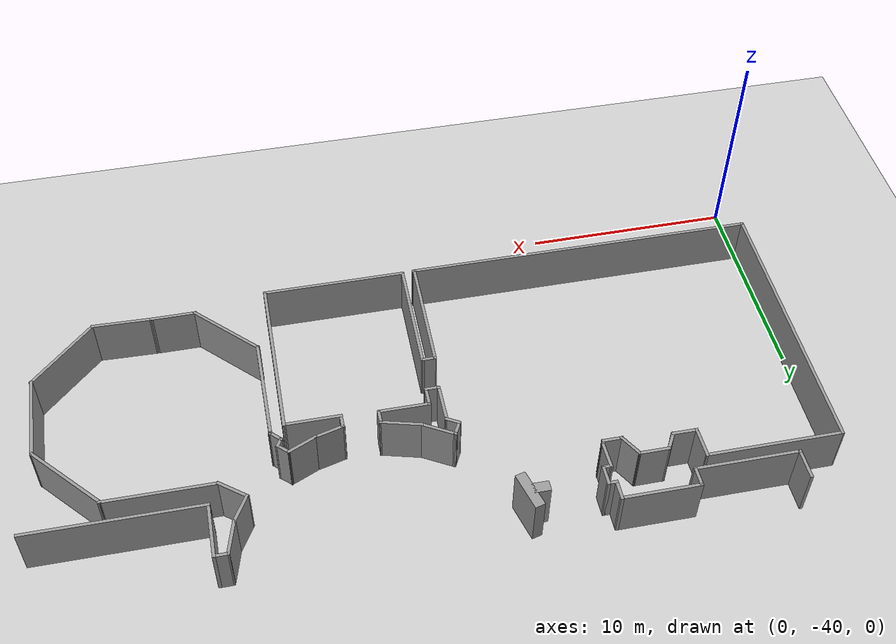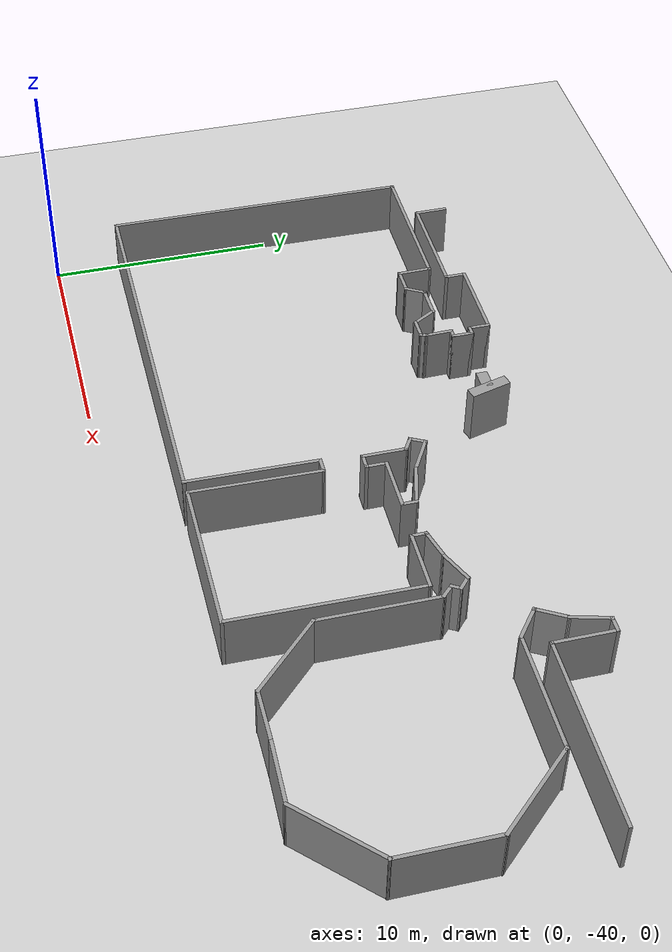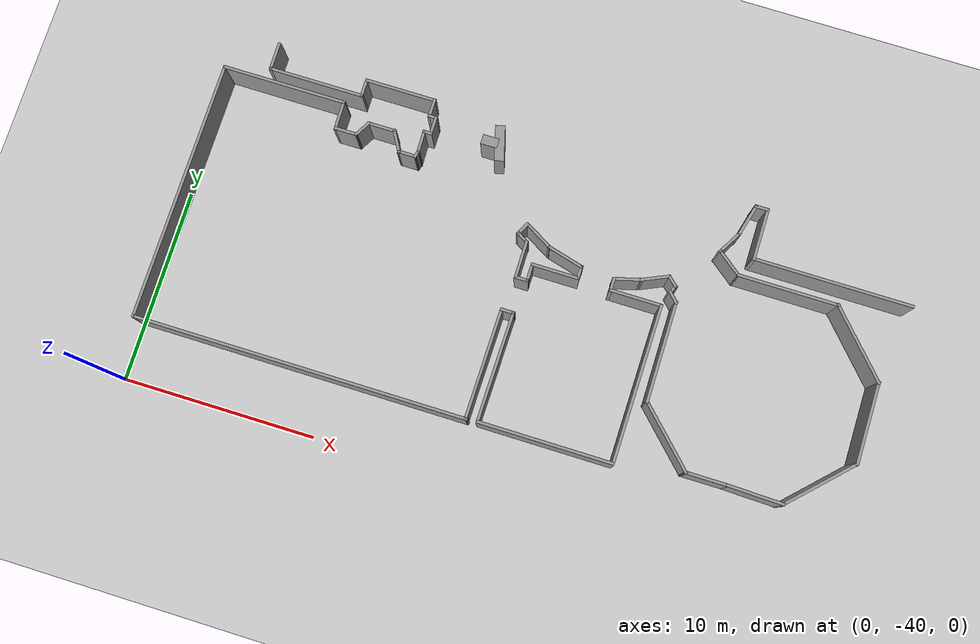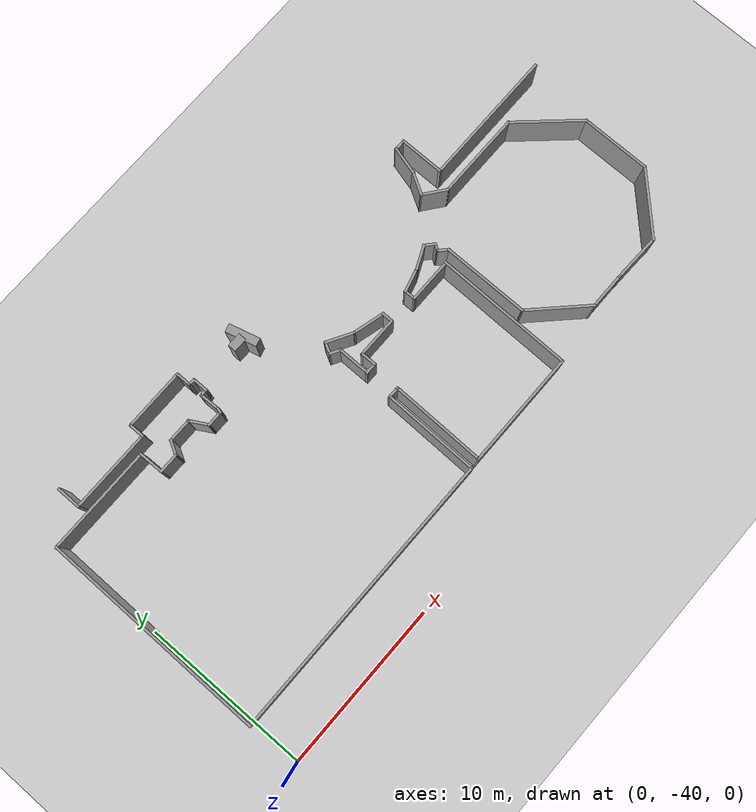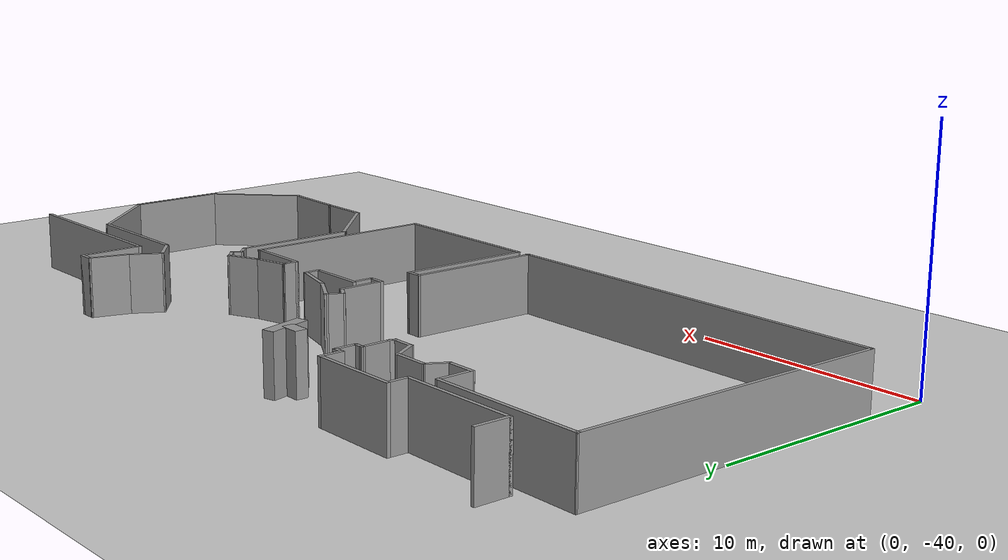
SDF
<sdf version="1.7">
 <world name="default">
  <model name="ground_plane">
   <static>1</static>
   <link name="link">
    <collision name="collision">
     <geometry><plane><normal>0 0 1</normal><size>100 100</size></plane></geometry>
     <surface>
      <contact><collide_bitmask>65535</collide_bitmask></contact>
      <friction><ode><mu>100</mu><mu2>50</mu2></ode></friction>
     </surface>
    </collision>
    <visual name="visual">
     <cast_shadows>0</cast_shadows>
     <geometry><plane><normal>0 0 1</normal><size>100 100</size></plane></geometry>
     <material>
      <script><uri>file://media/materials/scripts/gazebo.material</uri><name>Gazebo/Grey</name></script>
     </material>
    </visual>
   </link>
  </model>
  <model name="libraryModel">
   <pose>18.25 -18.5 0 0 -0 0</pose>
   <link name="Wall_1">
    <collision name="Wall_1_Collision">
     <geometry><box><size>6.5 0.15 2.5</size></box></geometry>
     <pose>0 0 1.25 0 -0 0</pose>
    </collision>
    <visual name="Wall_1_Visual">
     <pose>0 0 1.25 0 -0 0</pose>
     <geometry><box><size>6.5 0.15 2.5</size></box></geometry>
     <material>
      <script><uri>file://media/materials/scripts/gazebo.material</uri><name>Gazebo/Grey</name></script>
      <ambient>1 1 1 1</ambient>
     </material>
     <meta><layer>0</layer></meta>
    </visual>
    <pose>-14.9713 -5.1242 0 0 -0 0</pose>
   </link>
   <link name="Wall_10">
    <collision name="Wall_10_Collision">
     <geometry><box><size>1 0.15 2.5</size></box></geometry>
     <pose>0 0 1.25 0 -0 0</pose>
    </collision>
    <visual name="Wall_10_Visual">
     <pose>0 0 1.25 0 -0 0</pose>
     <geometry><box><size>1 0.15 2.5</size></box></geometry>
     <material>
      <script><uri>file://media/materials/scripts/gazebo.material</uri><name>Gazebo/Grey</name></script>
      <ambient>1 1 1 1</ambient>
     </material>
     <meta><layer>0</layer></meta>
    </visual>
    <pose>-7.44635 -4.0992 0 0 -0 1.5708</pose>
   </link>
   <link name="Wall_11">
    <collision name="Wall_11_Collision">
     <geometry><box><size>3.75 0.15 2.5</size></box></geometry>
     <pose>0 0 1.25 0 -0 0</pose>
    </collision>
    <visual name="Wall_11_Visual">
     <pose>0 0 1.25 0 -0 0</pose>
     <geometry><box><size>3.75 0.15 2.5</size></box></geometry>
     <material>
      <script><uri>file://media/materials/scripts/gazebo.material</uri><name>Gazebo/Grey</name></script>
      <ambient>1 1 1 1</ambient>
     </material>
     <meta><layer>0</layer></meta>
    </visual>
    <pose>-9.24635 -3.6742 0 0 -0 3.14159</pose>
   </link>
   <link name="Wall_115">
    <collision name="Wall_115_Collision">
     <geometry><box><size>1.8503 0.5 2.5</size></box></geometry>
     <pose>0 0 1.25 0 -0 0</pose>
    </collision>
    <visual name="Wall_115_Visual">
     <pose>0 0 1.25 0 -0 0</pose>
     <geometry><box><size>1.8503 0.5 2.5</size></box></geometry>
     <material>
      <script><uri>file://media/materials/scripts/gazebo.material</uri><name>Gazebo/Grey</name></script>
      <ambient>1 1 1 1</ambient>
     </material>
     <meta><layer>0</layer></meta>
    </visual>
    <pose>-3.6461 -4.83761 0 0 -0 1.83302</pose>
   </link>
   <link name="Wall_117">
    <collision name="Wall_117_Collision">
     <geometry><box><size>0.849678 0.5 2.5</size></box></geometry>
     <pose>0 0 1.25 0 -0 0</pose>
    </collision>
    <visual name="Wall_117_Visual">
     <pose>0 0 1.25 0 -0 0</pose>
     <geometry><box><size>0.849678 0.5 2.5</size></box></geometry>
     <material>
      <script><uri>file://media/materials/scripts/gazebo.material</uri><name>Gazebo/Grey</name></script>
      <ambient>1 1 1 1</ambient>
     </material>
     <meta><layer>0</layer></meta>
    </visual>
    <pose>-4.13511 -4.89061 0 0 -0 0</pose>
   </link>
   <link name="Wall_12">
    <collision name="Wall_12_Collision">
     <geometry><box><size>1 0.15 2.5</size></box></geometry>
     <pose>0 0 1.25 0 -0 0</pose>
    </collision>
    <visual name="Wall_12_Visual">
     <pose>0 0 1.25 0 -0 0</pose>
     <geometry><box><size>1 0.15 2.5</size></box></geometry>
     <material>
      <script><uri>file://media/materials/scripts/gazebo.material</uri><name>Gazebo/Grey</name></script>
      <ambient>1 1 1 1</ambient>
     </material>
     <meta><layer>0</layer></meta>
    </visual>
    <pose>-11.0463 -4.0992 0 0 -0 -1.5708</pose>
   </link>
   <link name="Wall_120">
    <collision name="Wall_120_Collision">
     <geometry><box><size>1.25 0.15 2.5</size></box></geometry>
     <pose>0 0 1.25 0 -0 0</pose>
    </collision>
    <visual name="Wall_120_Visual">
     <pose>0 0 1.25 0 -0 0</pose>
     <geometry><box><size>1.25 0.15 2.5</size></box></geometry>
     <material>
      <script><uri>file://media/materials/scripts/gazebo.material</uri><name>Gazebo/Grey</name></script>
      <ambient>1 1 1 1</ambient>
     </material>
     <meta><layer>0</layer></meta>
    </visual>
    <pose>-11.2176 -6.52441 0 0 -0 0</pose>
   </link>
   <link name="Wall_121">
    <collision name="Wall_121_Collision">
     <geometry><box><size>1 0.15 2.5</size></box></geometry>
     <pose>0 0 1.25 0 -0 0</pose>
    </collision>
    <visual name="Wall_121_Visual">
     <pose>0 0 1.25 0 -0 0</pose>
     <geometry><box><size>1 0.15 2.5</size></box></geometry>
     <material>
      <script><uri>file://media/materials/scripts/gazebo.material</uri><name>Gazebo/Grey</name></script>
      <ambient>1 1 1 1</ambient>
     </material>
     <meta><layer>0</layer></meta>
    </visual>
    <pose>-10.4551 -6.15635 0 0 -0 1.0472</pose>
   </link>
   <link name="Wall_122">
    <collision name="Wall_122_Collision">
     <geometry><box><size>1.5 0.15 2.5</size></box></geometry>
     <pose>0 0 1.25 0 -0 0</pose>
    </collision>
    <visual name="Wall_122_Visual">
     <pose>0 0 1.25 0 -0 0</pose>
     <geometry><box><size>1.5 0.15 2.5</size></box></geometry>
     <material>
      <script><uri>file://media/materials/scripts/gazebo.material</uri><name>Gazebo/Grey</name></script>
      <ambient>1 1 1 1</ambient>
     </material>
     <meta><layer>0</layer></meta>
    </visual>
    <pose>-9.56757 -5.78829 0 0 -0 0</pose>
   </link>
   <link name="Wall_123">
    <collision name="Wall_123_Collision">
     <geometry><box><size>1.25 0.15 2.5</size></box></geometry>
     <pose>0 0 1.25 0 -0 0</pose>
    </collision>
    <visual name="Wall_123_Visual">
     <pose>0 0 1.25 0 -0 0</pose>
     <geometry><box><size>1.25 0.15 2.5</size></box></geometry>
     <material>
      <script><uri>file://media/materials/scripts/gazebo.material</uri><name>Gazebo/Grey</name></script>
      <ambient>1 1 1 1</ambient>
     </material>
     <meta><layer>0</layer></meta>
    </visual>
    <pose>-8.61757 -6.26461 0 0 -0 -1.0472</pose>
   </link>
   <link name="Wall_124">
    <collision name="Wall_124_Collision">
     <geometry><box><size>1 0.15 2.5</size></box></geometry>
     <pose>0 0 1.25 0 -0 0</pose>
    </collision>
    <visual name="Wall_124_Visual">
     <pose>0 0 1.25 0 -0 0</pose>
     <geometry><box><size>1 0.15 2.5</size></box></geometry>
     <material>
      <script><uri>file://media/materials/scripts/gazebo.material</uri><name>Gazebo/Grey</name></script>
      <ambient>1 1 1 1</ambient>
     </material>
     <meta><layer>0</layer></meta>
    </visual>
    <pose>-7.91757 -6.74092 0 0 -0 0</pose>
   </link>
   <link name="Wall_125">
    <collision name="Wall_125_Collision">
     <geometry><box><size>0.379129 0.15 2.5</size></box></geometry>
     <pose>0 0 1.25 0 -0 0</pose>
    </collision>
    <visual name="Wall_125_Visual">
     <pose>0 0 1.25 0 -0 0</pose>
     <geometry><box><size>0.379129 0.15 2.5</size></box></geometry>
     <material>
      <script><uri>file://media/materials/scripts/gazebo.material</uri><name>Gazebo/Grey</name></script>
      <ambient>1 1 1 1</ambient>
     </material>
     <meta><layer>0</layer></meta>
    </visual>
    <pose>-7.45507 -6.63267 0 0 -0 1.23732</pose>
   </link>
   <link name="Wall_13">
    <collision name="Wall_13_Collision">
     <geometry><box><size>5 0.15 2.5</size></box></geometry>
     <pose>0 0 1.25 0 -0 0</pose>
    </collision>
    <visual name="Wall_13_Visual">
     <pose>0 0 1.25 0 -0 0</pose>
     <geometry><box><size>5 0.15 2.5</size></box></geometry>
     <material>
      <script><uri>file://media/materials/scripts/gazebo.material</uri><name>Gazebo/Grey</name></script>
      <ambient>1 1 1 1</ambient>
     </material>
     <meta><layer>0</layer></meta>
    </visual>
    <pose>-13.4713 -4.5242 0 0 -0 3.14159</pose>
   </link>
   <link name="Wall_14">
    <collision name="Wall_14_Collision">
     <geometry><box><size>1.5 0.15 2.5</size></box></geometry>
     <pose>0 0 1.25 0 -0 0</pose>
    </collision>
    <visual name="Wall_14_Visual">
     <pose>0 0 1.25 0 -0 0</pose>
     <geometry><box><size>1.5 0.15 2.5</size></box></geometry>
     <material>
      <script><uri>file://media/materials/scripts/gazebo.material</uri><name>Gazebo/Grey</name></script>
      <ambient>1 1 1 1</ambient>
     </material>
     <meta><layer>0</layer></meta>
    </visual>
    <pose>-15.8963 -3.8492 0 0 -0 1.5708</pose>
   </link>
   <link name="Wall_4">
    <collision name="Wall_4_Collision">
     <geometry><box><size>1.55139 0.15 2.5</size></box></geometry>
     <pose>0 0 1.25 0 -0 0</pose>
    </collision>
    <visual name="Wall_4_Visual">
     <pose>0 0 1.25 0 -0 0</pose>
     <geometry><box><size>1.55139 0.15 2.5</size></box></geometry>
     <material>
      <script><uri>file://media/materials/scripts/gazebo.material</uri><name>Gazebo/Grey</name></script>
      <ambient>1 1 1 1</ambient>
     </material>
     <meta><layer>0</layer></meta>
    </visual>
    <pose>-11.782 -5.82431 0 0 -0 -1.55024</pose>
   </link>
   <link name="Wall_48">
    <collision name="Wall_48_Collision">
     <geometry><box><size>8.25 0.15 2.5</size></box></geometry>
     <pose>0 0 1.25 0 -0 0</pose>
    </collision>
    <visual name="Wall_48_Visual">
     <pose>0 0 1.25 0 -0 0</pose>
     <geometry><box><size>8.25 0.15 2.5</size></box></geometry>
     <material>
      <script><uri>file://media/materials/scripts/gazebo.material</uri><name>Gazebo/Grey</name></script>
      <ambient>1 1 1 1</ambient>
     </material>
     <meta><layer>0</layer></meta>
    </visual>
    <pose>14.1815 -6.77862 0 0 -0 3.14159</pose>
   </link>
   <link name="Wall_49">
    <collision name="Wall_49_Collision">
     <geometry><box><size>2.75 0.15 2.5</size></box></geometry>
     <pose>0 0 1.25 0 -0 0</pose>
    </collision>
    <visual name="Wall_49_Visual">
     <pose>0 0 1.25 0 -0 0</pose>
     <geometry><box><size>2.75 0.15 2.5</size></box></geometry>
     <material>
      <script><uri>file://media/materials/scripts/gazebo.material</uri><name>Gazebo/Grey</name></script>
      <ambient>1 1 1 1</ambient>
     </material>
     <meta><layer>0</layer></meta>
    </visual>
    <pose>10.1315 -5.47862 0 0 -0 1.5708</pose>
   </link>
   <link name="Wall_50">
    <collision name="Wall_50_Collision">
     <geometry><box><size>0.75 0.15 2.5</size></box></geometry>
     <pose>0 0 1.25 0 -0 0</pose>
    </collision>
    <visual name="Wall_50_Visual">
     <pose>0 0 1.25 0 -0 0</pose>
     <geometry><box><size>0.75 0.15 2.5</size></box></geometry>
     <material>
      <script><uri>file://media/materials/scripts/gazebo.material</uri><name>Gazebo/Grey</name></script>
      <ambient>1 1 1 1</ambient>
     </material>
     <meta><layer>0</layer></meta>
    </visual>
    <pose>9.8315 -4.17862 0 0 -0 3.14159</pose>
   </link>
   <link name="Wall_51">
    <collision name="Wall_51_Collision">
     <geometry><box><size>1.75 0.15 2.5</size></box></geometry>
     <pose>0 0 1.25 0 -0 0</pose>
    </collision>
    <visual name="Wall_51_Visual">
     <pose>0 0 1.25 0 -0 0</pose>
     <geometry><box><size>1.75 0.15 2.5</size></box></geometry>
     <material>
      <script><uri>file://media/materials/scripts/gazebo.material</uri><name>Gazebo/Grey</name></script>
      <ambient>1 1 1 1</ambient>
     </material>
     <meta><layer>0</layer></meta>
    </visual>
    <pose>9.32444 -4.95136 0 0 -0 -1.8326</pose>
   </link>
   <link name="Wall_52">
    <collision name="Wall_52_Collision">
     <geometry><box><size>1.5 0.15 2.5</size></box></geometry>
     <pose>0 0 1.25 0 -0 0</pose>
    </collision>
    <visual name="Wall_52_Visual">
     <pose>0 0 1.25 0 -0 0</pose>
     <geometry><box><size>1.5 0.15 2.5</size></box></geometry>
     <material>
      <script><uri>file://media/materials/scripts/gazebo.material</uri><name>Gazebo/Grey</name></script>
      <ambient>1 1 1 1</ambient>
     </material>
     <meta><layer>0</layer></meta>
    </visual>
    <pose>8.77989 -6.30867 0 0 -0 -2.0944</pose>
   </link>
   <link name="Wall_53">
    <collision name="Wall_53_Collision">
     <geometry><box><size>1.61327 0.15 2.5</size></box></geometry>
     <pose>0 0 1.25 0 -0 0</pose>
    </collision>
    <visual name="Wall_53_Visual">
     <pose>0 0 1.25 0 -0 0</pose>
     <geometry><box><size>1.61327 0.15 2.5</size></box></geometry>
     <material>
      <script><uri>file://media/materials/scripts/gazebo.material</uri><name>Gazebo/Grey</name></script>
      <ambient>1 1 1 1</ambient>
     </material>
     <meta><layer>0</layer></meta>
    </visual>
    <pose>9.02042 -7.34175 0 0 -0 -0.659894</pose>
   </link>
   <link name="Wall_54">
    <collision name="Wall_54_Collision">
     <geometry><box><size>5.25 0.15 2.5</size></box></geometry>
     <pose>0 0 1.25 0 -0 0</pose>
    </collision>
    <visual name="Wall_54_Visual">
     <pose>0 0 1.25 0 -0 0</pose>
     <geometry><box><size>5.25 0.15 2.5</size></box></geometry>
     <material>
      <script><uri>file://media/materials/scripts/gazebo.material</uri><name>Gazebo/Grey</name></script>
      <ambient>1 1 1 1</ambient>
     </material>
     <meta><layer>0</layer></meta>
    </visual>
    <pose>12.1772 -7.79027 0 0 -0 0</pose>
   </link>
   <link name="Wall_55">
    <collision name="Wall_55_Collision">
     <geometry><box><size>4.40219 0.15 2.5</size></box></geometry>
     <pose>0 0 1.25 0 -0 0</pose>
    </collision>
    <visual name="Wall_55_Visual">
     <pose>0 0 1.25 0 -0 0</pose>
     <geometry><box><size>4.40219 0.15 2.5</size></box></geometry>
     <material>
      <script><uri>file://media/materials/scripts/gazebo.material</uri><name>Gazebo/Grey</name></script>
      <ambient>1 1 1 1</ambient>
     </material>
     <meta><layer>0</layer></meta>
    </visual>
    <pose>16.1357 -9.35701 0 0 -0 -0.828487</pose>
   </link>
   <link name="Wall_56">
    <collision name="Wall_56_Collision">
     <geometry><box><size>4.25 0.15 2.5</size></box></geometry>
     <pose>0 0 1.25 0 -0 0</pose>
    </collision>
    <visual name="Wall_56_Visual">
     <pose>0 0 1.25 0 -0 0</pose>
     <geometry><box><size>4.25 0.15 2.5</size></box></geometry>
     <material>
      <script><uri>file://media/materials/scripts/gazebo.material</uri><name>Gazebo/Grey</name></script>
      <ambient>1 1 1 1</ambient>
     </material>
     <meta><layer>0</layer></meta>
    </visual>
    <pose>17.5729 -12.9737 0 0 -0 -1.5708</pose>
   </link>
   <link name="Wall_6">
    <collision name="Wall_6_Collision">
     <geometry><box><size>1.30057 0.15 2.5</size></box></geometry>
     <pose>0 0 1.25 0 -0 0</pose>
    </collision>
    <visual name="Wall_6_Visual">
     <pose>0 0 1.25 0 -0 0</pose>
     <geometry><box><size>1.30057 0.15 2.5</size></box></geometry>
     <material>
      <script><uri>file://media/materials/scripts/gazebo.material</uri><name>Gazebo/Grey</name></script>
      <ambient>1 1 1 1</ambient>
     </material>
     <meta><layer>0</layer></meta>
    </visual>
    <pose>-7.43196 -5.94931 0 0 -0 1.59581</pose>
   </link>
   <link name="Wall_60">
    <collision name="Wall_60_Collision">
     <geometry><box><size>13.5464 0.15 2.5</size></box></geometry>
     <pose>0 0 1.25 0 -0 0</pose>
    </collision>
    <visual name="Wall_60_Visual">
     <pose>0 0 1.25 0 -0 0</pose>
     <geometry><box><size>13.5464 0.15 2.5</size></box></geometry>
     <material>
      <script><uri>file://media/materials/scripts/gazebo.material</uri><name>Gazebo/Grey</name></script>
      <ambient>1 1 1 1</ambient>
     </material>
     <meta><layer>0</layer></meta>
    </visual>
    <pose>-18.1887 -11.8224 0 0 -0 -1.57712</pose>
   </link>
   <link name="Wall_61">
    <collision name="Wall_61_Collision">
     <geometry><box><size>17.25 0.15 2.5</size></box></geometry>
     <pose>0 0 1.25 0 -0 0</pose>
    </collision>
    <visual name="Wall_61_Visual">
     <pose>0 0 1.25 0 -0 0</pose>
     <geometry><box><size>17.25 0.15 2.5</size></box></geometry>
     <material>
      <script><uri>file://media/materials/scripts/gazebo.material</uri><name>Gazebo/Grey</name></script>
      <ambient>1 1 1 1</ambient>
     </material>
     <meta><layer>0</layer></meta>
    </visual>
    <pose>-9.63869 -18.5206 0 0 -0 0</pose>
   </link>
   <link name="Wall_62">
    <collision name="Wall_62_Collision">
     <geometry><box><size>5.79638 0.15 2.5</size></box></geometry>
     <pose>0 0 1.25 0 -0 0</pose>
    </collision>
    <visual name="Wall_62_Visual">
     <pose>0 0 1.25 0 -0 0</pose>
     <geometry><box><size>5.79638 0.15 2.5</size></box></geometry>
     <material>
      <script><uri>file://media/materials/scripts/gazebo.material</uri><name>Gazebo/Grey</name></script>
      <ambient>1 1 1 1</ambient>
     </material>
     <meta><layer>0</layer></meta>
    </visual>
    <pose>-1.08869 -15.6974 0 0 -0 1.5558</pose>
   </link>
   <link name="Wall_63">
    <collision name="Wall_63_Collision">
     <geometry><box><size>0.75 0.15 2.5</size></box></geometry>
     <pose>0 0 1.25 0 -0 0</pose>
    </collision>
    <visual name="Wall_63_Visual">
     <pose>0 0 1.25 0 -0 0</pose>
     <geometry><box><size>0.75 0.15 2.5</size></box></geometry>
     <material>
      <script><uri>file://media/materials/scripts/gazebo.material</uri><name>Gazebo/Grey</name></script>
      <ambient>1 1 1 1</ambient>
     </material>
     <meta><layer>0</layer></meta>
    </visual>
    <pose>-0.746349 -12.8742 0 0 -0 0</pose>
   </link>
   <link name="Wall_64">
    <collision name="Wall_64_Collision">
     <geometry><box><size>5.67001 0.15 2.5</size></box></geometry>
     <pose>0 0 1.25 0 -0 0</pose>
    </collision>
    <visual name="Wall_64_Visual">
     <pose>0 0 1.25 0 -0 0</pose>
     <geometry><box><size>5.67001 0.15 2.5</size></box></geometry>
     <material>
      <script><uri>file://media/materials/scripts/gazebo.material</uri><name>Gazebo/Grey</name></script>
      <ambient>1 1 1 1</ambient>
     </material>
     <meta><layer>0</layer></meta>
    </visual>
    <pose>-0.488688 -15.6339 0 0 -0 -1.58614</pose>
   </link>
   <link name="Wall_65">
    <collision name="Wall_65_Collision">
     <geometry><box><size>7 0.15 2.5</size></box></geometry>
     <pose>0 0 1.25 0 -0 0</pose>
    </collision>
    <visual name="Wall_65_Visual">
     <pose>0 0 1.25 0 -0 0</pose>
     <geometry><box><size>7 0.15 2.5</size></box></geometry>
     <material>
      <script><uri>file://media/materials/scripts/gazebo.material</uri><name>Gazebo/Grey</name></script>
      <ambient>1 1 1 1</ambient>
     </material>
     <meta><layer>0</layer></meta>
    </visual>
    <pose>2.89397 -18.4782 0 0 -0 0</pose>
   </link>
   <link name="Wall_66">
    <collision name="Wall_66_Collision">
     <geometry><box><size>8.1698 0.15 2.5</size></box></geometry>
     <pose>0 0 1.25 0 -0 0</pose>
    </collision>
    <visual name="Wall_66_Visual">
     <pose>0 0 1.25 0 -0 0</pose>
     <geometry><box><size>8.1698 0.15 2.5</size></box></geometry>
     <material>
      <script><uri>file://media/materials/scripts/gazebo.material</uri><name>Gazebo/Grey</name></script>
      <ambient>1 1 1 1</ambient>
     </material>
     <meta><layer>0</layer></meta>
    </visual>
    <pose>6.36131 -14.3839 0 0 -0 1.56024</pose>
   </link>
   <link name="Wall_67">
    <collision name="Wall_67_Collision">
     <geometry><box><size>2.75 0.15 2.5</size></box></geometry>
     <pose>0 0 1.25 0 -0 0</pose>
    </collision>
    <visual name="Wall_67_Visual">
     <pose>0 0 1.25 0 -0 0</pose>
     <geometry><box><size>2.75 0.15 2.5</size></box></geometry>
     <material>
      <script><uri>file://media/materials/scripts/gazebo.material</uri><name>Gazebo/Grey</name></script>
      <ambient>1 1 1 1</ambient>
     </material>
     <meta><layer>0</layer></meta>
    </visual>
    <pose>5.10365 -10.3742 0 0 -0 3.14159</pose>
   </link>
   <link name="Wall_68">
    <collision name="Wall_68_Collision">
     <geometry><box><size>0.75 0.15 2.5</size></box></geometry>
     <pose>0 0 1.25 0 -0 0</pose>
    </collision>
    <visual name="Wall_68_Visual">
     <pose>0 0 1.25 0 -0 0</pose>
     <geometry><box><size>0.75 0.15 2.5</size></box></geometry>
     <material>
      <script><uri>file://media/materials/scripts/gazebo.material</uri><name>Gazebo/Grey</name></script>
      <ambient>1 1 1 1</ambient>
     </material>
     <meta><layer>0</layer></meta>
    </visual>
    <pose>3.80365 -10.0742 0 0 -0 1.5708</pose>
   </link>
   <link name="Wall_69">
    <collision name="Wall_69_Collision">
     <geometry><box><size>1.5 0.15 2.5</size></box></geometry>
     <pose>0 0 1.25 0 -0 0</pose>
    </collision>
    <visual name="Wall_69_Visual">
     <pose>0 0 1.25 0 -0 0</pose>
     <geometry><box><size>1.5 0.15 2.5</size></box></geometry>
     <material>
      <script><uri>file://media/materials/scripts/gazebo.material</uri><name>Gazebo/Grey</name></script>
      <ambient>1 1 1 1</ambient>
     </material>
     <meta><layer>0</layer></meta>
    </visual>
    <pose>4.45565 -9.5995 0 0 -0 0.261799</pose>
   </link>
   <link name="Wall_7">
    <collision name="Wall_7_Collision">
     <geometry><box><size>0.5 0.15 2.5</size></box></geometry>
     <pose>0 0 1.25 0 -0 0</pose>
    </collision>
    <visual name="Wall_7_Visual">
     <pose>0 0 1.25 0 -0 0</pose>
     <geometry><box><size>0.5 0.15 2.5</size></box></geometry>
     <material>
      <script><uri>file://media/materials/scripts/gazebo.material</uri><name>Gazebo/Grey</name></script>
      <ambient>1 1 1 1</ambient>
     </material>
     <meta><layer>0</layer></meta>
    </visual>
    <pose>-7.27135 -5.3742 0 0 -0 0</pose>
   </link>
   <link name="Wall_70">
    <collision name="Wall_70_Collision">
     <geometry><box><size>1.5296 0.15 2.5</size></box></geometry>
     <pose>0 0 1.25 0 -0 0</pose>
    </collision>
    <visual name="Wall_70_Visual">
     <pose>0 0 1.25 0 -0 0</pose>
     <geometry><box><size>1.5296 0.15 2.5</size></box></geometry>
     <material>
      <script><uri>file://media/materials/scripts/gazebo.material</uri><name>Gazebo/Grey</name></script>
      <ambient>1 1 1 1</ambient>
     </material>
     <meta><layer>0</layer></meta>
    </visual>
    <pose>5.73685 -9.14208 0 0 -0 0.422303</pose>
   </link>
   <link name="Wall_71">
    <collision name="Wall_71_Collision">
     <geometry><box><size>0.755789 0.15 2.5</size></box></geometry>
     <pose>0 0 1.25 0 -0 0</pose>
    </collision>
    <visual name="Wall_71_Visual">
     <pose>0 0 1.25 0 -0 0</pose>
     <geometry><box><size>0.755789 0.15 2.5</size></box></geometry>
     <material>
      <script><uri>file://media/materials/scripts/gazebo.material</uri><name>Gazebo/Grey</name></script>
      <ambient>1 1 1 1</ambient>
     </material>
     <meta><layer>0</layer></meta>
    </visual>
    <pose>6.59551 -9.06168 0 0 -0 -0.731509</pose>
   </link>
   <link name="Wall_72">
    <collision name="Wall_72_Collision">
     <geometry><box><size>0.534818 0.15 2.5</size></box></geometry>
     <pose>0 0 1.25 0 -0 0</pose>
    </collision>
    <visual name="Wall_72_Visual">
     <pose>0 0 1.25 0 -0 0</pose>
     <geometry><box><size>0.534818 0.15 2.5</size></box></geometry>
     <material>
      <script><uri>file://media/materials/scripts/gazebo.material</uri><name>Gazebo/Grey</name></script>
      <ambient>1 1 1 1</ambient>
     </material>
     <meta><layer>0</layer></meta>
    </visual>
    <pose>6.72563 -9.43117 0 0 -0 -2.08891</pose>
   </link>
   <link name="Wall_73">
    <collision name="Wall_73_Collision">
     <geometry><box><size>0.75 0.15 2.5</size></box></geometry>
     <pose>0 0 1.25 0 -0 0</pose>
    </collision>
    <visual name="Wall_73_Visual">
     <pose>0 0 1.25 0 -0 0</pose>
     <geometry><box><size>0.75 0.15 2.5</size></box></geometry>
     <material>
      <script><uri>file://media/materials/scripts/gazebo.material</uri><name>Gazebo/Grey</name></script>
      <ambient>1 1 1 1</ambient>
     </material>
     <meta><layer>0</layer></meta>
    </visual>
    <pose>6.84247 -9.81046 0 0 -0 -0.785398</pose>
   </link>
   <link name="Wall_74">
    <collision name="Wall_74_Collision">
     <geometry><box><size>5.25 0.15 2.5</size></box></geometry>
     <pose>0 0 1.25 0 -0 0</pose>
    </collision>
    <visual name="Wall_74_Visual">
     <pose>0 0 1.25 0 -0 0</pose>
     <geometry><box><size>5.25 0.15 2.5</size></box></geometry>
     <material>
      <script><uri>file://media/materials/scripts/gazebo.material</uri><name>Gazebo/Grey</name></script>
      <ambient>1 1 1 1</ambient>
     </material>
     <meta><layer>0</layer></meta>
    </visual>
    <pose>7.0546 -12.5726 0 0 -0 -1.5708</pose>
   </link>
   <link name="Wall_75">
    <collision name="Wall_75_Collision">
     <geometry><box><size>4 0.15 2.5</size></box></geometry>
     <pose>0 0 1.25 0 -0 0</pose>
    </collision>
    <visual name="Wall_75_Visual">
     <pose>0 0 1.25 0 -0 0</pose>
     <geometry><box><size>4 0.15 2.5</size></box></geometry>
     <material>
      <script><uri>file://media/materials/scripts/gazebo.material</uri><name>Gazebo/Grey</name></script>
      <ambient>1 1 1 1</ambient>
     </material>
     <meta><layer>0</layer></meta>
    </visual>
    <pose>8.41578 -16.4838 0 0 -0 -0.785398</pose>
   </link>
   <link name="Wall_76">
    <collision name="Wall_76_Collision">
     <geometry><box><size>2.25 0.15 2.5</size></box></geometry>
     <pose>0 0 1.25 0 -0 0</pose>
    </collision>
    <visual name="Wall_76_Visual">
     <pose>0 0 1.25 0 -0 0</pose>
     <geometry><box><size>2.25 0.15 2.5</size></box></geometry>
     <material>
      <script><uri>file://media/materials/scripts/gazebo.material</uri><name>Gazebo/Grey</name></script>
      <ambient>1 1 1 1</ambient>
     </material>
     <meta><layer>0</layer></meta>
    </visual>
    <pose>10.827 -17.845 0 0 -0 0</pose>
   </link>
   <link name="Wall_78">
    <collision name="Wall_78_Collision">
     <geometry><box><size>2.94788 0.15 2.5</size></box></geometry>
     <pose>0 0 1.25 0 -0 0</pose>
    </collision>
    <visual name="Wall_78_Visual">
     <pose>0 0 1.25 0 -0 0</pose>
     <geometry><box><size>2.94788 0.15 2.5</size></box></geometry>
     <material>
      <script><uri>file://media/materials/scripts/gazebo.material</uri><name>Gazebo/Grey</name></script>
      <ambient>1 1 1 1</ambient>
     </material>
     <meta><layer>0</layer></meta>
    </visual>
    <pose>13.2754 -17.8839 0 0 -0 -0.027858</pose>
   </link>
   <link name="Wall_79">
    <collision name="Wall_79_Collision">
     <geometry><box><size>4.25 0.15 2.5</size></box></geometry>
     <pose>0 0 1.25 0 -0 0</pose>
    </collision>
    <visual name="Wall_79_Visual">
     <pose>0 0 1.25 0 -0 0</pose>
     <geometry><box><size>4.25 0.15 2.5</size></box></geometry>
     <material>
      <script><uri>file://media/materials/scripts/gazebo.material</uri><name>Gazebo/Grey</name></script>
      <ambient>1 1 1 1</ambient>
     </material>
     <meta><layer>0</layer></meta>
    </visual>
    <pose>16.1233 -16.4733 0 0 -0 0.785398</pose>
   </link>
   <link name="Wall_8">
    <collision name="Wall_8_Collision">
     <geometry><box><size>1 0.15 2.5</size></box></geometry>
     <pose>0 0 1.25 0 -0 0</pose>
    </collision>
    <visual name="Wall_8_Visual">
     <pose>0 0 1.25 0 -0 0</pose>
     <geometry><box><size>1 0.15 2.5</size></box></geometry>
     <material>
      <script><uri>file://media/materials/scripts/gazebo.material</uri><name>Gazebo/Grey</name></script>
      <ambient>1 1 1 1</ambient>
     </material>
     <meta><layer>0</layer></meta>
    </visual>
    <pose>-7.09635 -4.9492 0 0 -0 1.5708</pose>
   </link>
   <link name="Wall_81">
    <collision name="Wall_81_Collision">
     <geometry><box><size>1.75 0.15 2.5</size></box></geometry>
     <pose>0 0 1.25 0 -0 0</pose>
    </collision>
    <visual name="Wall_81_Visual">
     <pose>0 0 1.25 0 -0 0</pose>
     <geometry><box><size>1.75 0.15 2.5</size></box></geometry>
     <material>
      <script><uri>file://media/materials/scripts/gazebo.material</uri><name>Gazebo/Grey</name></script>
      <ambient>1 1 1 1</ambient>
     </material>
     <meta><layer>0</layer></meta>
    </visual>
    <pose>-0.394268 -8.79697 0 0 -0 -0.523599</pose>
   </link>
   <link name="Wall_82">
    <collision name="Wall_82_Collision">
     <geometry><box><size>2 0.15 2.5</size></box></geometry>
     <pose>0 0 1.25 0 -0 0</pose>
    </collision>
    <visual name="Wall_82_Visual">
     <pose>0 0 1.25 0 -0 0</pose>
     <geometry><box><size>2 0.15 2.5</size></box></geometry>
     <material>
      <script><uri>file://media/materials/scripts/gazebo.material</uri><name>Gazebo/Grey</name></script>
      <ambient>1 1 1 1</ambient>
     </material>
     <meta><layer>0</layer></meta>
    </visual>
    <pose>1.19203 -9.43638 0 0 -0 -0.261799</pose>
   </link>
   <link name="Wall_83">
    <collision name="Wall_83_Collision">
     <geometry><box><size>0.75 0.15 2.5</size></box></geometry>
     <pose>0 0 1.25 0 -0 0</pose>
    </collision>
    <visual name="Wall_83_Visual">
     <pose>0 0 1.25 0 -0 0</pose>
     <geometry><box><size>0.75 0.15 2.5</size></box></geometry>
     <material>
      <script><uri>file://media/materials/scripts/gazebo.material</uri><name>Gazebo/Grey</name></script>
      <ambient>1 1 1 1</ambient>
     </material>
     <meta><layer>0</layer></meta>
    </visual>
    <pose>2.08552 -9.97578 0 0 -0 -1.5708</pose>
   </link>
   <link name="Wall_84">
    <collision name="Wall_84_Collision">
     <geometry><box><size>2.5 0.15 2.5</size></box></geometry>
     <pose>0 0 1.25 0 -0 0</pose>
    </collision>
    <visual name="Wall_84_Visual">
     <pose>0 0 1.25 0 -0 0</pose>
     <geometry><box><size>2.5 0.15 2.5</size></box></geometry>
     <material>
      <script><uri>file://media/materials/scripts/gazebo.material</uri><name>Gazebo/Grey</name></script>
      <ambient>1 1 1 1</ambient>
     </material>
     <meta><layer>0</layer></meta>
    </visual>
    <pose>0.910515 -10.2758 0 0 -0 3.14159</pose>
   </link>
   <link name="Wall_85">
    <collision name="Wall_85_Collision">
     <geometry><box><size>1 0.15 2.5</size></box></geometry>
     <pose>0 0 1.25 0 -0 0</pose>
    </collision>
    <visual name="Wall_85_Visual">
     <pose>0 0 1.25 0 -0 0</pose>
     <geometry><box><size>1 0.15 2.5</size></box></geometry>
     <material>
      <script><uri>file://media/materials/scripts/gazebo.material</uri><name>Gazebo/Grey</name></script>
      <ambient>1 1 1 1</ambient>
     </material>
     <meta><layer>0</layer></meta>
    </visual>
    <pose>-0.264485 -10.7008 0 0 -0 -1.5708</pose>
   </link>
   <link name="Wall_86">
    <collision name="Wall_86_Collision">
     <geometry><box><size>0.75 0.15 2.5</size></box></geometry>
     <pose>0 0 1.25 0 -0 0</pose>
    </collision>
    <visual name="Wall_86_Visual">
     <pose>0 0 1.25 0 -0 0</pose>
     <geometry><box><size>0.75 0.15 2.5</size></box></geometry>
     <material>
      <script><uri>file://media/materials/scripts/gazebo.material</uri><name>Gazebo/Grey</name></script>
      <ambient>1 1 1 1</ambient>
     </material>
     <meta><layer>0</layer></meta>
    </visual>
    <pose>-0.564485 -11.1258 0 0 -0 3.14159</pose>
   </link>
   <link name="Wall_87">
    <collision name="Wall_87_Collision">
     <geometry><box><size>2 0.15 2.5</size></box></geometry>
     <pose>0 0 1.25 0 -0 0</pose>
    </collision>
    <visual name="Wall_87_Visual">
     <pose>0 0 1.25 0 -0 0</pose>
     <geometry><box><size>2 0.15 2.5</size></box></geometry>
     <material>
      <script><uri>file://media/materials/scripts/gazebo.material</uri><name>Gazebo/Grey</name></script>
      <ambient>1 1 1 1</ambient>
     </material>
     <meta><layer>0</layer></meta>
    </visual>
    <pose>-0.864485 -10.2008 0 0 -0 1.5708</pose>
   </link>
   <link name="Wall_88">
    <collision name="Wall_88_Collision">
     <geometry><box><size>0.75 0.15 2.5</size></box></geometry>
     <pose>0 0 1.25 0 -0 0</pose>
    </collision>
    <visual name="Wall_88_Visual">
     <pose>0 0 1.25 0 -0 0</pose>
     <geometry><box><size>0.75 0.15 2.5</size></box></geometry>
     <material>
      <script><uri>file://media/materials/scripts/gazebo.material</uri><name>Gazebo/Grey</name></script>
      <ambient>1 1 1 1</ambient>
     </material>
     <meta><layer>0</layer></meta>
    </visual>
    <pose>-1.12429 -9.12578 0 0 -0 2.61799</pose>
   </link>
   <link name="Wall_89">
    <collision name="Wall_89_Collision">
     <geometry><box><size>0.800571 0.15 2.5</size></box></geometry>
     <pose>0 0 1.25 0 -0 0</pose>
    </collision>
    <visual name="Wall_89_Visual">
     <pose>0 0 1.25 0 -0 0</pose>
     <geometry><box><size>0.800571 0.15 2.5</size></box></geometry>
     <material>
      <script><uri>file://media/materials/scripts/gazebo.material</uri><name>Gazebo/Grey</name></script>
      <ambient>1 1 1 1</ambient>
     </material>
     <meta><layer>0</layer></meta>
    </visual>
    <pose>-1.23559 -8.68637 0 0 -0 1.09669</pose>
   </link>
   <link name="Wall_9">
    <collision name="Wall_9_Collision">
     <geometry><box><size>0.5 0.15 2.5</size></box></geometry>
     <pose>0 0 1.25 0 -0 0</pose>
    </collision>
    <visual name="Wall_9_Visual">
     <pose>0 0 1.25 0 -0 0</pose>
     <geometry><box><size>0.5 0.15 2.5</size></box></geometry>
     <material>
      <script><uri>file://media/materials/scripts/gazebo.material</uri><name>Gazebo/Grey</name></script>
      <ambient>1 1 1 1</ambient>
     </material>
     <meta><layer>0</layer></meta>
    </visual>
    <pose>-7.27135 -4.5242 0 0 -0 3.14159</pose>
   </link>
   <static>1</static>
  </model>
 </world>
</sdf>
